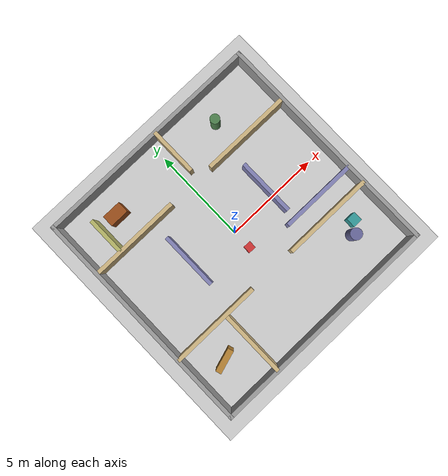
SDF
<?xml version="1.0" ?>
<sdf version="1.6">
  <world name="complex_maze">
    <include>
      <uri>model://ground_plane</uri>
    </include>
    <include>
      <uri>model://sun</uri>
    </include>

    <!-- Physics settings for stable simulation -->
    <physics type="ode">
      <max_step_size>0.001</max_step_size>
      <real_time_factor>1.0</real_time_factor>
      <real_time_update_rate>1000</real_time_update_rate>
    </physics>

    <!--   Complex maze environment for autonomous mapping & AMCL     -->
    <!--   Outer boundary: 12 m x 12 m                               -->
    <!--   Robot spawns at origin (0,0), which is roughly center      -->

    <!-- === Outer walls (12 x 12 m boundary) === -->
    <!-- North wall -->
    <model name="wall_north">
      <static>true</static>
      <pose>0 6 0.5 0 0 0</pose>
      <link name="link">
        <collision name="collision">
          <geometry><box><size>12.2 0.2 1.0</size></box></geometry>
        </collision>
        <visual name="visual">
          <geometry><box><size>12.2 0.2 1.0</size></box></geometry>
          <material><ambient>0.6 0.6 0.6 1</ambient></material>
        </visual>
      </link>
    </model>

    <!-- South wall -->
    <model name="wall_south">
      <static>true</static>
      <pose>0 -6 0.5 0 0 0</pose>
      <link name="link">
        <collision name="collision">
          <geometry><box><size>12.2 0.2 1.0</size></box></geometry>
        </collision>
        <visual name="visual">
          <geometry><box><size>12.2 0.2 1.0</size></box></geometry>
          <material><ambient>0.6 0.6 0.6 1</ambient></material>
        </visual>
      </link>
    </model>

    <!-- East wall -->
    <model name="wall_east">
      <static>true</static>
      <pose>6 0 0.5 0 0 0</pose>
      <link name="link">
        <collision name="collision">
          <geometry><box><size>0.2 12.2 1.0</size></box></geometry>
        </collision>
        <visual name="visual">
          <geometry><box><size>0.2 12.2 1.0</size></box></geometry>
          <material><ambient>0.6 0.6 0.6 1</ambient></material>
        </visual>
      </link>
    </model>

    <!-- West wall -->
    <model name="wall_west">
      <static>true</static>
      <pose>-6 0 0.5 0 0 0</pose>
      <link name="link">
        <collision name="collision">
          <geometry><box><size>0.2 12.2 1.0</size></box></geometry>
        </collision>
        <visual name="visual">
          <geometry><box><size>0.2 12.2 1.0</size></box></geometry>
          <material><ambient>0.6 0.6 0.6 1</ambient></material>
        </visual>
      </link>
    </model>

    <!-- === Internal walls creating rooms and corridors === -->

    <!-- Horizontal divider - upper section left, gap x=-1.25..+1.25 (2.5m wide) -->
    <model name="wall_h1">
      <static>true</static>
      <pose>-3.625 3 0.5 0 0 0</pose>
      <link name="link">
        <collision name="collision">
          <geometry><box><size>4.75 0.2 1.0</size></box></geometry>
        </collision>
        <visual name="visual">
          <geometry><box><size>4.75 0.2 1.0</size></box></geometry>
          <material><ambient>0.8 0.7 0.5 1</ambient></material>
        </visual>
      </link>
    </model>

    <!-- Horizontal divider - upper section right, gap x=-1.25..+1.25 (2.5m wide) -->
    <model name="wall_h1b">
      <static>true</static>
      <pose>3.625 3 0.5 0 0 0</pose>
      <link name="link">
        <collision name="collision">
          <geometry><box><size>4.75 0.2 1.0</size></box></geometry>
        </collision>
        <visual name="visual">
          <geometry><box><size>4.75 0.2 1.0</size></box></geometry>
          <material><ambient>0.8 0.7 0.5 1</ambient></material>
        </visual>
      </link>
    </model>

    <!-- Vertical divider - splits upper rooms (Room A left, Room B right) -->
    <model name="wall_v1">
      <static>true</static>
      <pose>0.5 4.75 0.5 0 0 0</pose>
      <link name="link">
        <collision name="collision">
          <geometry><box><size>0.2 2.5 1.0</size></box></geometry>
        </collision>
        <visual name="visual">
          <geometry><box><size>0.2 2.5 1.0</size></box></geometry>
          <material><ambient>0.8 0.7 0.5 1</ambient></material>
        </visual>
      </link>
    </model>

    <!-- Horizontal divider - lower section left, gap x=-1.25..+1.25 (2.5m wide) -->
    <model name="wall_h2">
      <static>true</static>
      <pose>-3.625 -2.5 0.5 0 0 0</pose>
      <link name="link">
        <collision name="collision">
          <geometry><box><size>4.75 0.2 1.0</size></box></geometry>
        </collision>
        <visual name="visual">
          <geometry><box><size>4.75 0.2 1.0</size></box></geometry>
          <material><ambient>0.8 0.7 0.5 1</ambient></material>
        </visual>
      </link>
    </model>

    <!-- Horizontal divider - lower section right, gap x=-1.25..+1.25 (2.5m wide) -->
    <model name="wall_h2b">
      <static>true</static>
      <pose>3.625 -2.5 0.5 0 0 0</pose>
      <link name="link">
        <collision name="collision">
          <geometry><box><size>4.75 0.2 1.0</size></box></geometry>
        </collision>
        <visual name="visual">
          <geometry><box><size>4.75 0.2 1.0</size></box></geometry>
          <material><ambient>0.8 0.7 0.5 1</ambient></material>
        </visual>
      </link>
    </model>

    <!-- Vertical wall - lower left partition -->
    <model name="wall_v2">
      <static>true</static>
      <pose>-3 -4.25 0.5 0 0 0</pose>
      <link name="link">
        <collision name="collision">
          <geometry><box><size>0.2 3.5 1.0</size></box></geometry>
        </collision>
        <visual name="visual">
          <geometry><box><size>0.2 3.5 1.0</size></box></geometry>
          <material><ambient>0.8 0.7 0.5 1</ambient></material>
        </visual>
      </link>
    </model>

    <!-- L-shaped corridor wall segment (x=2.5 to give 1.8m corridor width) -->
    <model name="wall_L1">
      <static>true</static>
      <pose>2.5 0.5 0.5 0 0 0</pose>
      <link name="link">
        <collision name="collision">
          <geometry><box><size>0.2 3.0 1.0</size></box></geometry>
        </collision>
        <visual name="visual">
          <geometry><box><size>0.2 3.0 1.0</size></box></geometry>
          <material><ambient>0.5 0.5 0.7 1</ambient></material>
        </visual>
      </link>
    </model>

    <!-- L-shaped corridor wall horizontal continuation -->
    <model name="wall_L2">
      <static>true</static>
      <pose>4.0 -1.5 0.5 0 0 0</pose>
      <link name="link">
        <collision name="collision">
          <geometry><box><size>4.0 0.2 1.0</size></box></geometry>
        </collision>
        <visual name="visual">
          <geometry><box><size>4.0 0.2 1.0</size></box></geometry>
          <material><ambient>0.5 0.5 0.7 1</ambient></material>
        </visual>
      </link>
    </model>

    <!-- Left corridor wall (x=-2.5, corridor width 1.8m from center) -->
    <model name="wall_deadend">
      <static>true</static>
      <pose>-2.5 0.5 0.5 0 0 0</pose>
      <link name="link">
        <collision name="collision">
          <geometry><box><size>0.2 3.0 1.0</size></box></geometry>
        </collision>
        <visual name="visual">
          <geometry><box><size>0.2 3.0 1.0</size></box></geometry>
          <material><ambient>0.5 0.5 0.7 1</ambient></material>
        </visual>
      </link>
    </model>

    <!-- === Obstacles inside rooms === -->

    <!-- Table-like obstacle in Room A (top-left) -->
    <model name="obstacle_table_A">
      <static>true</static>
      <pose>-3.5 4.5 0.4 0 0 0</pose>
      <link name="link">
        <collision name="collision">
          <geometry><box><size>1.0 0.6 0.8</size></box></geometry>
        </collision>
        <visual name="visual">
          <geometry><box><size>1.0 0.6 0.8</size></box></geometry>
          <material><ambient>0.6 0.3 0.1 1</ambient></material>
        </visual>
      </link>
    </model>

    <!-- Cylinder obstacle in Room B (top-right) -->
    <model name="obstacle_pillar_B">
      <static>true</static>
      <pose>3 4.5 0.5 0 0 0</pose>
      <link name="link">
        <collision name="collision">
          <geometry><cylinder><radius>0.25</radius><length>1.0</length></cylinder></geometry>
        </collision>
        <visual name="visual">
          <geometry><cylinder><radius>0.25</radius><length>1.0</length></cylinder></geometry>
          <material><ambient>0.3 0.5 0.3 1</ambient></material>
        </visual>
      </link>
    </model>

    <!-- Small box obstacle - placed clear of spawn origin and doorways -->
    <model name="obstacle_box_center">
      <static>true</static>
      <pose>0.0 -1.0 0.3 0 0 0</pose>
      <link name="link">
        <collision name="collision">
          <geometry><box><size>0.4 0.4 0.6</size></box></geometry>
        </collision>
        <visual name="visual">
          <geometry><box><size>0.4 0.4 0.6</size></box></geometry>
          <material><ambient>0.8 0.2 0.2 1</ambient></material>
        </visual>
      </link>
    </model>

    <!-- Pillar in lower-right area -->
    <model name="obstacle_pillar_D">
      <static>true</static>
      <pose>4 -4 0.5 0 0 0</pose>
      <link name="link">
        <collision name="collision">
          <geometry><cylinder><radius>0.3</radius><length>1.0</length></cylinder></geometry>
        </collision>
        <visual name="visual">
          <geometry><cylinder><radius>0.3</radius><length>1.0</length></cylinder></geometry>
          <material><ambient>0.4 0.4 0.6 1</ambient></material>
        </visual>
      </link>
    </model>

    <!-- Narrow passage obstacle -->
    <model name="obstacle_narrow">
      <static>true</static>
      <pose>-4.5 -4 0.4 0 0 0.3</pose>
      <link name="link">
        <collision name="collision">
          <geometry><box><size>1.2 0.3 0.8</size></box></geometry>
        </collision>
        <visual name="visual">
          <geometry><box><size>1.2 0.3 0.8</size></box></geometry>
          <material><ambient>0.7 0.5 0.2 1</ambient></material>
        </visual>
      </link>
    </model>

    <!-- Obstacle in the L-corridor -->
    <model name="obstacle_Lcorridor">
      <static>true</static>
      <pose>4.5 -3.5 0.3 0 0 0</pose>
      <link name="link">
        <collision name="collision">
          <geometry><box><size>0.5 0.5 0.6</size></box></geometry>
        </collision>
        <visual name="visual">
          <geometry><box><size>0.5 0.5 0.6</size></box></geometry>
          <material><ambient>0.2 0.6 0.6 1</ambient></material>
        </visual>
      </link>
    </model>

    <!-- Short vertical wall in upper-left room (replaces problematic angled wall) -->
    <model name="wall_room_A_divider">
      <static>true</static>
      <pose>-4.5 4.0 0.5 0 0 0</pose>
      <link name="link">
        <collision name="collision">
          <geometry><box><size>0.2 2.0 1.0</size></box></geometry>
        </collision>
        <visual name="visual">
          <geometry><box><size>0.2 2.0 1.0</size></box></geometry>
          <material><ambient>0.7 0.7 0.4 1</ambient></material>
        </visual>
      </link>
    </model>

  </world>
</sdf>
